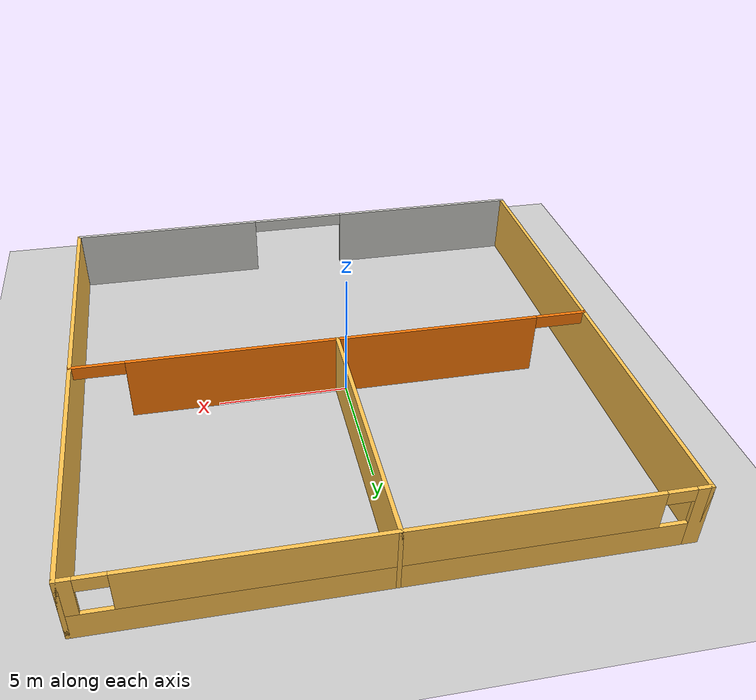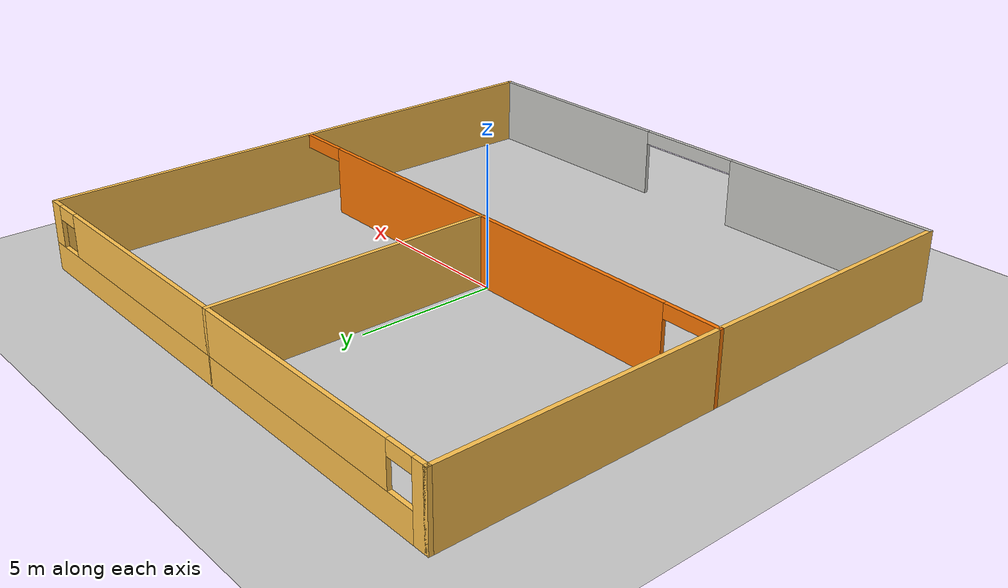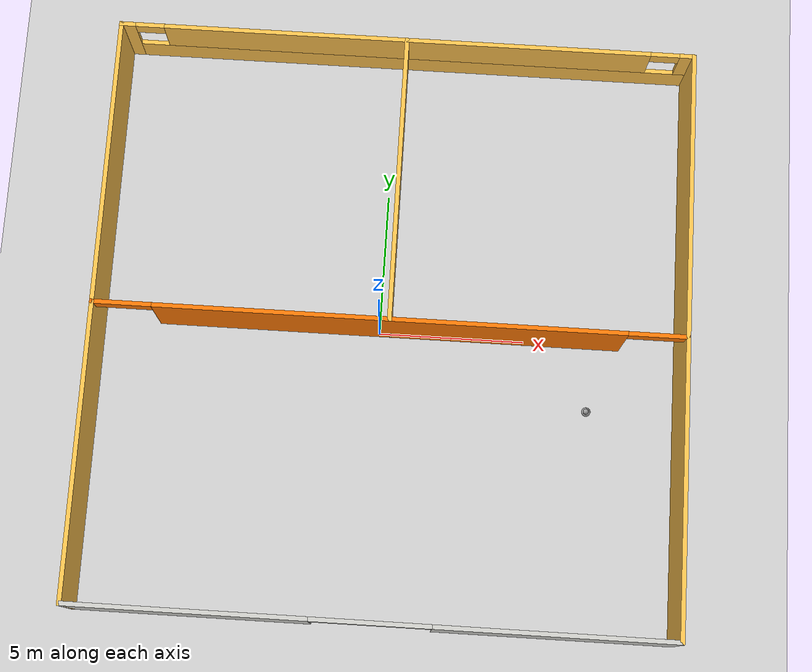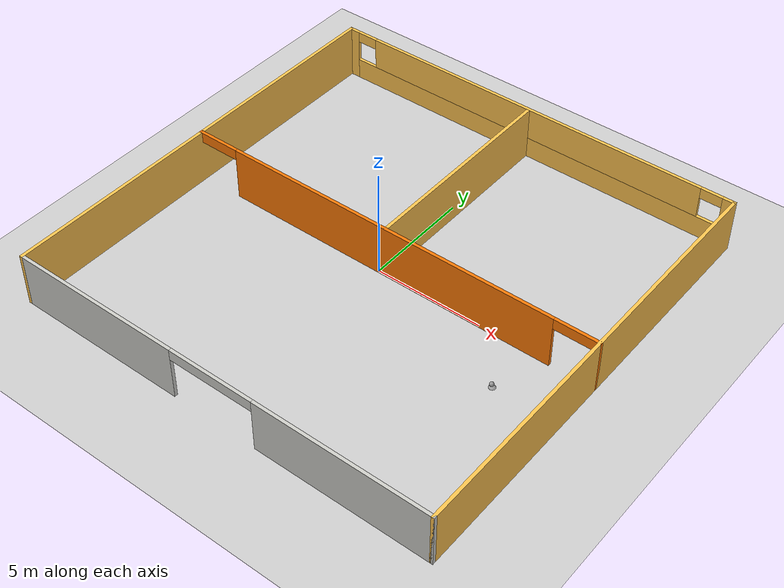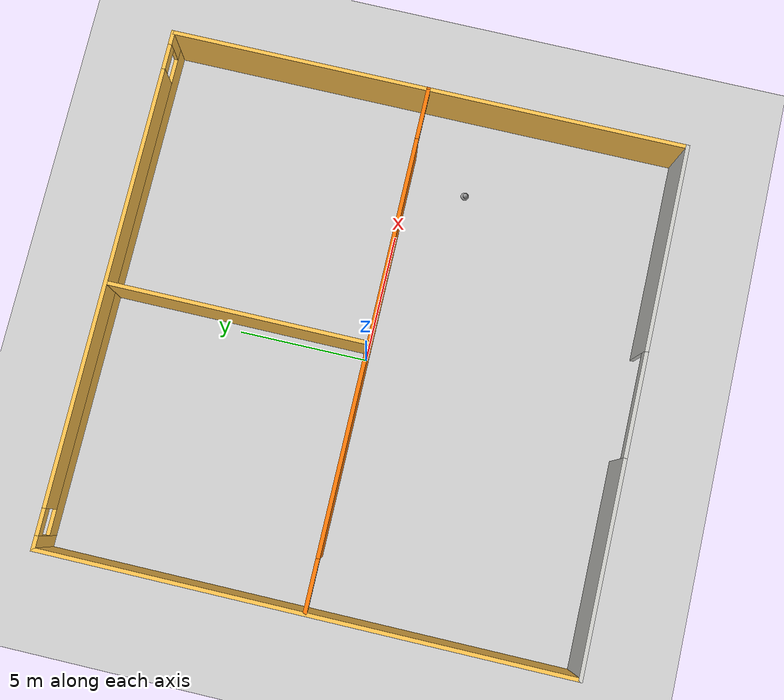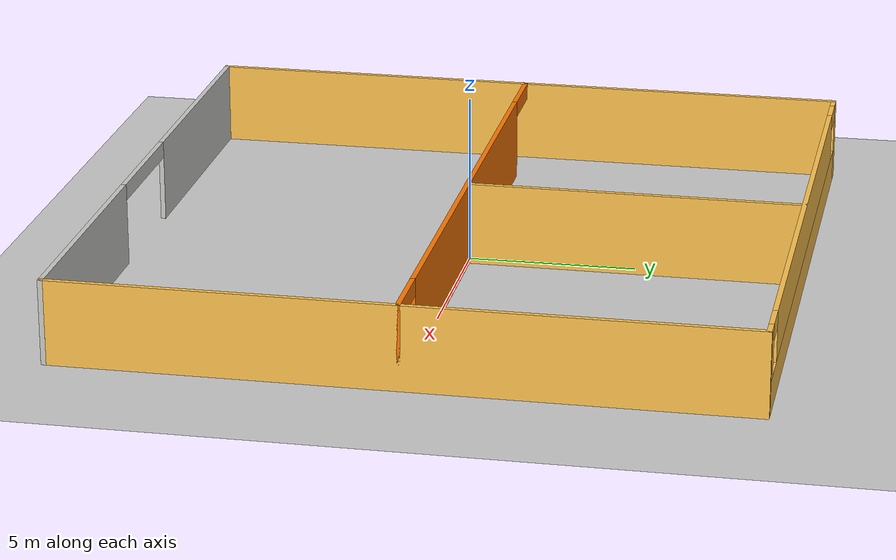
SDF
<sdf version="1.7">
 <world name="default">
  <model name="ground_plane">
   <static>1</static>
   <link name="link">
    <collision name="collision">
     <geometry><plane><normal>0 0 1</normal><size>100 100</size></plane></geometry>
     <surface>
      <contact><collide_bitmask>65535</collide_bitmask></contact>
      <friction><ode><mu>100</mu><mu2>50</mu2></ode></friction>
     </surface>
    </collision>
    <visual name="visual">
     <cast_shadows>0</cast_shadows>
     <geometry><plane><normal>0 0 1</normal><size>100 100</size></plane></geometry>
     <material>
      <script><uri>file://media/materials/scripts/gazebo.material</uri><name>Gazebo/Grey</name></script>
     </material>
    </visual>
   </link>
  </model>
  <model name="Building">
   <pose>0.332196 -0.01046 0 0 -0 0</pose>
   <link name="Wall_20">
    <pose>0 10 0 0 -0 0</pose>
    <visual name="Wall_20_Visual_0">
     <pose>-9.7875 0 1.25 0 -0 0</pose>
     <geometry><box><size>0.575 0.15 2.5</size></box></geometry>
     <material>
      <script><uri>file://media/materials/scripts/gazebo.material</uri><name>Gazebo/Grey</name></script>
      <ambient>1 0.764706 0.305882 1</ambient>
     </material>
     <meta><layer>0</layer></meta>
    </visual>
    <collision name="Wall_20_Collision_0">
     <geometry><box><size>0.575 0.15 2.5</size></box></geometry>
     <pose>-9.7875 0 1.25 0 -0 0</pose>
    </collision>
    <visual name="Wall_20_Visual_1">
     <pose>0.2875 0 0.5 0 -0 0</pose>
     <geometry><box><size>19.575 0.15 1</size></box></geometry>
     <material>
      <script><uri>file://media/materials/scripts/gazebo.material</uri><name>Gazebo/Grey</name></script>
      <ambient>1 0.764706 0.305882 1</ambient>
     </material>
     <meta><layer>0</layer></meta>
    </visual>
    <collision name="Wall_20_Collision_1">
     <geometry><box><size>19.575 0.15 1</size></box></geometry>
     <pose>0.2875 0 0.5 0 -0 0</pose>
    </collision>
    <visual name="Wall_20_Visual_2">
     <pose>0 0 1.75 0 -0 0</pose>
     <geometry><box><size>17 0.15 1.5</size></box></geometry>
     <material>
      <script><uri>file://media/materials/scripts/gazebo.material</uri><name>Gazebo/Grey</name></script>
      <ambient>1 0.764706 0.305882 1</ambient>
     </material>
     <meta><layer>0</layer></meta>
    </visual>
    <collision name="Wall_20_Collision_2">
     <geometry><box><size>17 0.15 1.5</size></box></geometry>
     <pose>0 0 1.75 0 -0 0</pose>
    </collision>
    <visual name="Wall_20_Visual_3">
     <pose>9.7875 0 1.75 0 -0 0</pose>
     <geometry><box><size>0.575 0.15 1.5</size></box></geometry>
     <material>
      <script><uri>file://media/materials/scripts/gazebo.material</uri><name>Gazebo/Grey</name></script>
      <ambient>1 0.764706 0.305882 1</ambient>
     </material>
     <meta><layer>0</layer></meta>
    </visual>
    <collision name="Wall_20_Collision_3">
     <geometry><box><size>0.575 0.15 1.5</size></box></geometry>
     <pose>9.7875 0 1.75 0 -0 0</pose>
    </collision>
    <visual name="Wall_20_Visual_4">
     <pose>-9 0 2.25 0 -0 0</pose>
     <geometry><box><size>1 0.15 0.5</size></box></geometry>
     <material>
      <script><uri>file://media/materials/scripts/gazebo.material</uri><name>Gazebo/Grey</name></script>
      <ambient>1 0.764706 0.305882 1</ambient>
     </material>
     <meta><layer>0</layer></meta>
    </visual>
    <collision name="Wall_20_Collision_4">
     <geometry><box><size>1 0.15 0.5</size></box></geometry>
     <pose>-9 0 2.25 0 -0 0</pose>
    </collision>
    <visual name="Wall_20_Visual_5">
     <pose>9 0 2.25 0 -0 0</pose>
     <geometry><box><size>1 0.15 0.5</size></box></geometry>
     <material>
      <script><uri>file://media/materials/scripts/gazebo.material</uri><name>Gazebo/Grey</name></script>
      <ambient>1 0.764706 0.305882 1</ambient>
     </material>
     <meta><layer>0</layer></meta>
    </visual>
    <collision name="Wall_20_Collision_5">
     <geometry><box><size>1 0.15 0.5</size></box></geometry>
     <pose>9 0 2.25 0 -0 0</pose>
    </collision>
   </link>
   <link name="Wall_22">
    <pose>0 -10 0 0 -0 0</pose>
    <visual name="Wall_22_Visual_0">
     <pose>-6.0375 0 1.25 0 -0 0</pose>
     <geometry><box><size>8.075 0.15 2.5</size></box></geometry>
     <material>
      <script><uri>file://media/materials/scripts/gazebo.material</uri><name>Gazebo/CeilingTiled</name></script>
      <ambient>1 1 1 1</ambient>
     </material>
     <meta><layer>0</layer></meta>
    </visual>
    <collision name="Wall_22_Collision_0">
     <geometry><box><size>8.075 0.15 2.5</size></box></geometry>
     <pose>-6.0375 0 1.25 0 -0 0</pose>
    </collision>
    <visual name="Wall_22_Visual_1">
     <pose>6.0375 0 1.25 0 -0 0</pose>
     <geometry><box><size>8.075 0.15 2.5</size></box></geometry>
     <material>
      <script><uri>file://media/materials/scripts/gazebo.material</uri><name>Gazebo/CeilingTiled</name></script>
      <ambient>1 1 1 1</ambient>
     </material>
     <meta><layer>0</layer></meta>
    </visual>
    <collision name="Wall_22_Collision_1">
     <geometry><box><size>8.075 0.15 2.5</size></box></geometry>
     <pose>6.0375 0 1.25 0 -0 0</pose>
    </collision>
    <visual name="Wall_22_Visual_2">
     <pose>0 0 2.25 0 -0 0</pose>
     <geometry><box><size>4 0.15 0.5</size></box></geometry>
     <material>
      <script><uri>file://media/materials/scripts/gazebo.material</uri><name>Gazebo/CeilingTiled</name></script>
      <ambient>1 1 1 1</ambient>
     </material>
     <meta><layer>0</layer></meta>
    </visual>
    <collision name="Wall_22_Collision_2">
     <geometry><box><size>4 0.15 0.5</size></box></geometry>
     <pose>0 0 2.25 0 -0 0</pose>
    </collision>
   </link>
   <link name="Wall_24">
    <collision name="Wall_24_Collision">
     <geometry><box><size>20.15 0.15 2.5</size></box></geometry>
     <pose>0 0 1.25 0 -0 0</pose>
    </collision>
    <visual name="Wall_24_Visual">
     <pose>0 0 1.25 0 -0 0</pose>
     <geometry><box><size>20.15 0.15 2.5</size></box></geometry>
     <material>
      <script><uri>file://media/materials/scripts/gazebo.material</uri><name>Gazebo/Grey</name></script>
      <ambient>1 0.764706 0.305882 1</ambient>
     </material>
     <meta><layer>0</layer></meta>
    </visual>
    <pose>-10 0 0 0 -0 -1.5708</pose>
   </link>
   <link name="Wall_26">
    <collision name="Wall_26_Collision">
     <geometry><box><size>20.15 0.15 2.5</size></box></geometry>
     <pose>0 0 1.25 0 -0 0</pose>
    </collision>
    <visual name="Wall_26_Visual">
     <pose>0 0 1.25 0 -0 0</pose>
     <geometry><box><size>20.15 0.15 2.5</size></box></geometry>
     <material>
      <script><uri>file://media/materials/scripts/gazebo.material</uri><name>Gazebo/Grey</name></script>
      <ambient>1 0.764706 0.305882 1</ambient>
     </material>
     <meta><layer>0</layer></meta>
    </visual>
    <pose>10 0 0 0 -0 -1.5708</pose>
   </link>
   <link name="Wall_28">
    <visual name="Wall_28_Visual_0">
     <pose>-10.0375 0 1.25 0 -0 0</pose>
     <geometry><box><size>0.075 0.15 2.5</size></box></geometry>
     <material>
      <script><uri>file://media/materials/scripts/gazebo.material</uri><name>Gazebo/Grey</name></script>
      <ambient>0.996078 0.47451 0.0196078 1</ambient>
     </material>
     <meta><layer>0</layer></meta>
    </visual>
    <collision name="Wall_28_Collision_0">
     <geometry><box><size>0.075 0.15 2.5</size></box></geometry>
     <pose>-10.0375 0 1.25 0 -0 0</pose>
    </collision>
    <visual name="Wall_28_Visual_1">
     <pose>0 0 1.25 0 -0 0</pose>
     <geometry><box><size>16 0.15 2.5</size></box></geometry>
     <material>
      <script><uri>file://media/materials/scripts/gazebo.material</uri><name>Gazebo/Grey</name></script>
      <ambient>0.996078 0.47451 0.0196078 1</ambient>
     </material>
     <meta><layer>0</layer></meta>
    </visual>
    <collision name="Wall_28_Collision_1">
     <geometry><box><size>16 0.15 2.5</size></box></geometry>
     <pose>0 0 1.25 0 -0 0</pose>
    </collision>
    <visual name="Wall_28_Visual_2">
     <pose>10.0375 0 1.25 0 -0 0</pose>
     <geometry><box><size>0.075 0.15 2.5</size></box></geometry>
     <material>
      <script><uri>file://media/materials/scripts/gazebo.material</uri><name>Gazebo/Grey</name></script>
      <ambient>0.996078 0.47451 0.0196078 1</ambient>
     </material>
     <meta><layer>0</layer></meta>
    </visual>
    <collision name="Wall_28_Collision_2">
     <geometry><box><size>0.075 0.15 2.5</size></box></geometry>
     <pose>10.0375 0 1.25 0 -0 0</pose>
    </collision>
    <visual name="Wall_28_Visual_3">
     <pose>-9 0 2.25 0 -0 0</pose>
     <geometry><box><size>2 0.15 0.5</size></box></geometry>
     <material>
      <script><uri>file://media/materials/scripts/gazebo.material</uri><name>Gazebo/Grey</name></script>
      <ambient>0.996078 0.47451 0.0196078 1</ambient>
     </material>
     <meta><layer>0</layer></meta>
    </visual>
    <collision name="Wall_28_Collision_3">
     <geometry><box><size>2 0.15 0.5</size></box></geometry>
     <pose>-9 0 2.25 0 -0 0</pose>
    </collision>
    <visual name="Wall_28_Visual_4">
     <pose>9 0 2.25 0 -0 0</pose>
     <geometry><box><size>2 0.15 0.5</size></box></geometry>
     <material>
      <script><uri>file://media/materials/scripts/gazebo.material</uri><name>Gazebo/Grey</name></script>
      <ambient>0.996078 0.47451 0.0196078 1</ambient>
     </material>
     <meta><layer>0</layer></meta>
    </visual>
    <collision name="Wall_28_Collision_4">
     <geometry><box><size>2 0.15 0.5</size></box></geometry>
     <pose>9 0 2.25 0 -0 0</pose>
    </collision>
   </link>
   <link name="Wall_30">
    <collision name="Wall_30_Collision">
     <geometry><box><size>10.15 0.15 2.5</size></box></geometry>
     <pose>0 0 1.25 0 -0 0</pose>
    </collision>
    <visual name="Wall_30_Visual">
     <pose>0 0 1.25 0 -0 0</pose>
     <geometry><box><size>10.15 0.15 2.5</size></box></geometry>
     <material>
      <script><uri>file://media/materials/scripts/gazebo.material</uri><name>Gazebo/Grey</name></script>
      <ambient>1 0.764706 0.305882 1</ambient>
     </material>
     <meta><layer>0</layer></meta>
    </visual>
    <pose>0 5 0 0 -0 -1.5708</pose>
   </link>
   <static>1</static>
  </model>
  <model name="HumanoidRobot_8">
   <link name="link_1">
    <inertial>
     <mass>1</mass>
     <inertia><ixx>0.1</ixx><ixy>0</ixy><ixz>0</ixz><iyy>0.1</iyy><iyz>0</iyz><izz>0.1</izz></inertia>
    </inertial>
    <pose>0.01 0.01 -0.15 1.5707 -0 0</pose>
    <visual name="visual">
     <geometry><sphere><radius>0.2</radius></sphere></geometry>
     <material>
      <lighting>1</lighting>
      <script><uri>file://media/materials/scripts/gazebo.material</uri><name>Gazebo/Grey</name></script>
      <shader type="pixel"><normal_map>__default__</normal_map></shader>
      <ambient>0.3 0.3 0.3 1</ambient>
      <diffuse>0.7 0.7 0.7 1</diffuse>
      <specular>0.01 0.01 0.01 1</specular>
      <emissive>0 0 0 1</emissive>
     </material>
    </visual>
    <collision name="collision">
     <geometry><sphere><radius>0.2</radius></sphere></geometry>
     <surface>
      <friction>
       <ode><mu>1</mu><mu2>1</mu2><fdir1>0 0 0</fdir1><slip1>0</slip1><slip2>0</slip2></ode>
       <torsional>
        <coefficient>1</coefficient>
        <patch_radius>0</patch_radius>
        <surface_radius>0</surface_radius>
        <use_patch_radius>1</use_patch_radius>
        <ode><slip>0</slip></ode>
       </torsional>
      </friction>
      <bounce><restitution_coefficient>0</restitution_coefficient><threshold>1e+06</threshold></bounce>
      <contact>
       <collide_without_contact>0</collide_without_contact>
       <collide_without_contact_bitmask>1</collide_without_contact_bitmask>
       <collide_bitmask>1</collide_bitmask>
       <ode>
        <soft_cfm>0</soft_cfm>
        <soft_erp>0.2</soft_erp>
        <kp>1e+13</kp>
        <kd>1</kd>
        <max_vel>0.01</max_vel>
        <min_depth>0</min_depth>
       </ode>
       <bullet>
        <split_impulse>1</split_impulse>
        <split_impulse_penetration_threshold>-0.01</split_impulse_penetration_threshold>
        <soft_cfm>0</soft_cfm>
        <soft_erp>0.2</soft_erp>
        <kp>1e+13</kp>
        <kd>1</kd>
       </bullet>
      </contact>
     </surface>
    </collision>
   </link>
   <link name="link_3">
    <inertial>
     <mass>1</mass>
     <inertia><ixx>0.1</ixx><ixy>0</ixy><ixz>0</ixz><iyy>0.1</iyy><iyz>0</iyz><izz>0.1</izz></inertia>
    </inertial>
    <pose>-0.01 -0.01 0.15 0 -0 0</pose>
    <visual name="visual">
     <geometry><sphere><radius>0.1</radius></sphere></geometry>
     <material>
      <lighting>1</lighting>
      <script><uri>file://media/materials/scripts/gazebo.material</uri><name>Gazebo/Grey</name></script>
      <shader type="pixel"><normal_map>__default__</normal_map></shader>
      <ambient>0.3 0.3 0.3 1</ambient>
      <diffuse>0.7 0.7 0.7 1</diffuse>
      <specular>0.01 0.01 0.01 1</specular>
      <emissive>0 0 0 1</emissive>
     </material>
    </visual>
    <collision name="collision">
     <geometry><sphere><radius>0.1</radius></sphere></geometry>
     <surface>
      <friction>
       <ode><mu>1</mu><mu2>1</mu2><fdir1>0 0 0</fdir1><slip1>0</slip1><slip2>0</slip2></ode>
       <torsional>
        <coefficient>1</coefficient>
        <patch_radius>0</patch_radius>
        <surface_radius>0</surface_radius>
        <use_patch_radius>1</use_patch_radius>
        <ode><slip>0</slip></ode>
       </torsional>
      </friction>
      <bounce><restitution_coefficient>0</restitution_coefficient><threshold>1e+06</threshold></bounce>
      <contact>
       <collide_without_contact>0</collide_without_contact>
       <collide_without_contact_bitmask>1</collide_without_contact_bitmask>
       <collide_bitmask>1</collide_bitmask>
       <ode>
        <soft_cfm>0</soft_cfm>
        <soft_erp>0.2</soft_erp>
        <kp>1e+13</kp>
        <kd>1</kd>
        <max_vel>0.01</max_vel>
        <min_depth>0</min_depth>
       </ode>
       <bullet>
        <split_impulse>1</split_impulse>
        <split_impulse_penetration_threshold>-0.01</split_impulse_penetration_threshold>
        <soft_cfm>0</soft_cfm>
        <soft_erp>0.2</soft_erp>
        <kp>1e+13</kp>
        <kd>1</kd>
       </bullet>
      </contact>
     </surface>
    </collision>
   </link>
   <joint name="link_1_JOINT_0" type="revolute">
    <parent>link_1</parent>
    <child>link_3</child>
    <axis>
     <xyz>0 1 0</xyz>
     <limit>
      <lower>-1.79769e+308</lower>
      <upper>1.79769e+308</upper>
      <effort>-1</effort>
      <velocity>-1</velocity>
     </limit>
     <dynamics>
      <spring_reference>0</spring_reference>
      <spring_stiffness>0</spring_stiffness>
      <damping>0</damping>
     </dynamics>
    </axis>
    <physics>
     <ode><limit><cfm>0</cfm><erp>0.2</erp></limit><suspension><cfm>0</cfm><erp>0.2</erp></suspension></ode>
    </physics>
   </joint>
   <static>0</static>
   <pose>7.2761 -2.30605 0 0 -0 0</pose>
  </model>
 </world>
</sdf>
